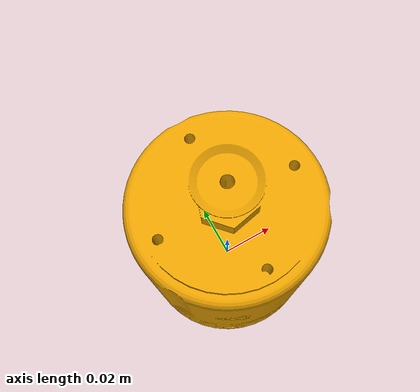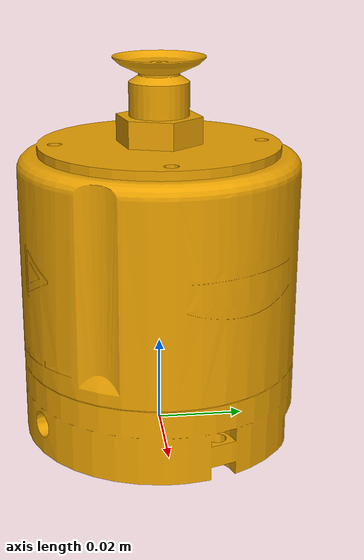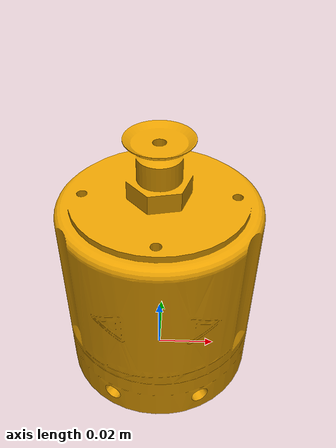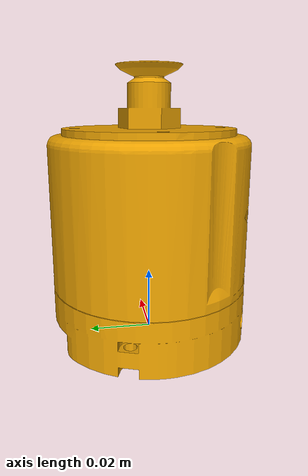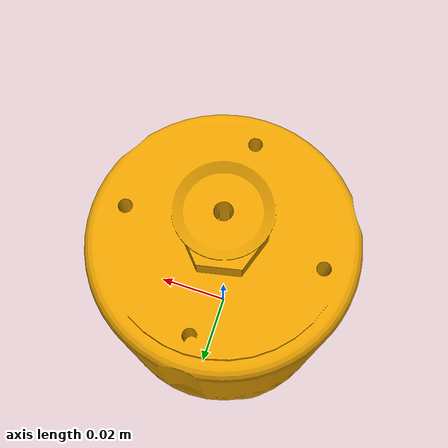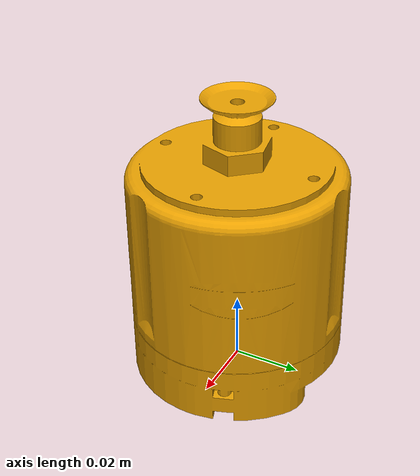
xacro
<?xml version="1.0" encoding="utf-8"?>
<robot xmlns:xacro="http://www.ros.org/wiki/xacro">

    <!-- EXPOSE STANDARD MATE LINK ARGUMENT -->
    <xacro:arg name="eoat_base_link" default="schmalz_base_link"/>

    <!-- This EoAT can be defined as a singular link -->
    <link name="schmalz_base_link">

      <inertial> <!--TODO: update using more accurate inertial properties-->
        <origin xyz="0.0 0.0 0.0" rpy="0.0 0.0 0.0"/>
        <mass value="0.35"/>
        <inertia ixx="7.5684E-05" ixy="-5.2187E-10" ixz="-9.5675E-09" iyy="9.5682E-05" iyz="1.1846E-07" izz="7.6694E-05"/>
      </inertial>

      <visual>
        <origin xyz="0.0 0.0 0.0" rpy="0.0 0.0 0.0"/>
        <geometry>
          <mesh filename="package://goddard_schmalz/description/meshes/visual/schmalz.dae"/>
        </geometry>
      </visual>

      <collision>
        <origin xyz="0.0 0.0 0.0" rpy="0.0 0.0 0.0"/>
        <geometry>
          <mesh filename="package://goddard_schmalz/description/meshes/collision/schmalz.stl"/>
        </geometry>
      </collision>

    </link>

</robot>
